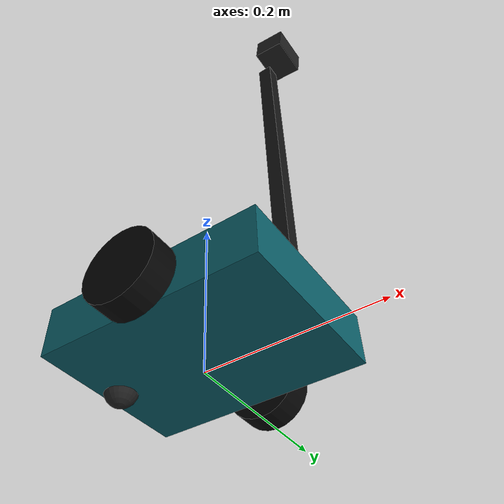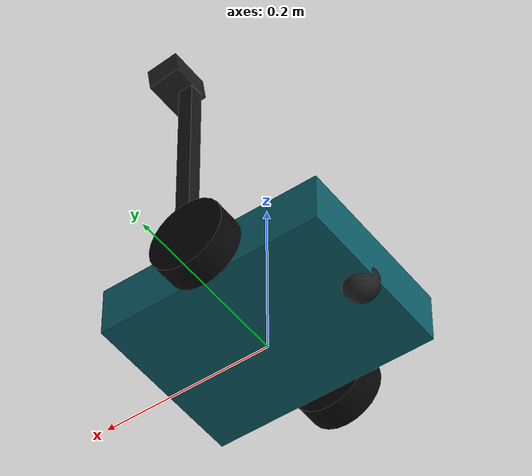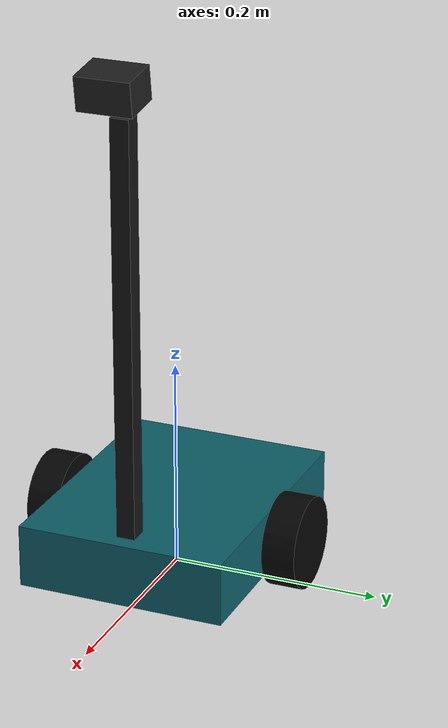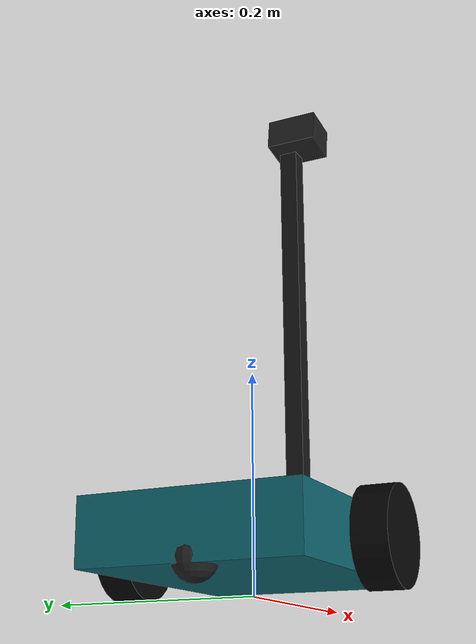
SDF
<?xml version="1.0"?>
<sdf version="1.6">
  <model name="stable_diff_cam">
    <pose>0 0 0 0 0 0</pose>

    <link name="base_footprint"/>

    <link name="base_link">
      <pose>0 0 0.045 0 0 0</pose>
      <inertial>
        <pose>0 0 -0.010 0 0 0</pose>
        <mass>2.5</mass>
        <inertia>
          <ixx>0.009</ixx>
          <ixy>0.0</ixy>
          <ixz>0.0</ixz>
          <iyy>0.016</iyy>
          <iyz>0.0</iyz>
          <izz>0.022</izz>
        </inertia>
      </inertial>
      <collision name="base_collision">
        <geometry>
          <box>
            <size>0.26 0.20 0.06</size>
          </box>
        </geometry>
        <surface>
          <contact>
            <ode>
              <kp>1e+5</kp>
              <kd>1</kd>
              <max_vel>0.01</max_vel>
              <min_depth>0.001</min_depth>
            </ode>
          </contact>
        </surface>
      </collision>
      <visual name="base_visual">
        <geometry>
          <box>
            <size>0.26 0.20 0.06</size>
          </box>
        </geometry>
        <material>
          <ambient>0.05 0.16 0.18 1</ambient>
          <diffuse>0.05 0.38 0.42 1</diffuse>
          <specular>0.02 0.02 0.02 1</specular>
        </material>
      </visual>
      <visual name="camera_mast_visual">
        <pose>0.105 0 0.225 0 0 0</pose>
        <geometry>
          <box>
            <size>0.018 0.018 0.40</size>
          </box>
        </geometry>
        <material>
          <ambient>0.08 0.08 0.08 1</ambient>
          <diffuse>0.08 0.08 0.08 1</diffuse>
        </material>
      </visual>
    </link>

    <joint name="base_joint" type="fixed">
      <parent>base_footprint</parent>
      <child>base_link</child>
      <pose>0 0 0.045 0 0 0</pose>
    </joint>

    <link name="wheel_left_link">
      <pose>0 0.120 0.044 -1.5708 0 0</pose>
      <inertial>
        <mass>0.25</mass>
        <inertia>
          <ixx>0.00012</ixx>
          <ixy>0.0</ixy>
          <ixz>0.0</ixz>
          <iyy>0.00022</iyy>
          <iyz>0.0</iyz>
          <izz>0.00012</izz>
        </inertia>
      </inertial>
      <collision name="collision">
        <geometry>
          <cylinder>
            <radius>0.044</radius>
            <length>0.032</length>
          </cylinder>
        </geometry>
        <surface>
          <friction>
            <ode>
              <mu>4.0</mu>
              <mu2>4.0</mu2>
              <slip1>0.01</slip1>
              <slip2>0.01</slip2>
            </ode>
          </friction>
          <contact>
            <ode>
              <kp>1e+5</kp>
              <kd>1</kd>
              <max_vel>0.01</max_vel>
              <min_depth>0.001</min_depth>
            </ode>
          </contact>
        </surface>
      </collision>
      <visual name="visual">
        <geometry>
          <cylinder>
            <radius>0.044</radius>
            <length>0.032</length>
          </cylinder>
        </geometry>
        <material>
          <ambient>0.02 0.02 0.02 1</ambient>
          <diffuse>0.02 0.02 0.02 1</diffuse>
        </material>
      </visual>
    </link>

    <link name="wheel_right_link">
      <pose>0 -0.120 0.044 -1.5708 0 0</pose>
      <inertial>
        <mass>0.25</mass>
        <inertia>
          <ixx>0.00012</ixx>
          <ixy>0.0</ixy>
          <ixz>0.0</ixz>
          <iyy>0.00022</iyy>
          <iyz>0.0</iyz>
          <izz>0.00012</izz>
        </inertia>
      </inertial>
      <collision name="collision">
        <geometry>
          <cylinder>
            <radius>0.044</radius>
            <length>0.032</length>
          </cylinder>
        </geometry>
        <surface>
          <friction>
            <ode>
              <mu>4.0</mu>
              <mu2>4.0</mu2>
              <slip1>0.01</slip1>
              <slip2>0.01</slip2>
            </ode>
          </friction>
          <contact>
            <ode>
              <kp>1e+5</kp>
              <kd>1</kd>
              <max_vel>0.01</max_vel>
              <min_depth>0.001</min_depth>
            </ode>
          </contact>
        </surface>
      </collision>
      <visual name="visual">
        <geometry>
          <cylinder>
            <radius>0.044</radius>
            <length>0.032</length>
          </cylinder>
        </geometry>
        <material>
          <ambient>0.02 0.02 0.02 1</ambient>
          <diffuse>0.02 0.02 0.02 1</diffuse>
        </material>
      </visual>
    </link>

    <joint name="wheel_left_joint" type="revolute">
      <parent>base_link</parent>
      <child>wheel_left_link</child>
      <axis>
        <xyz>0 0 1</xyz>
        <limit>
          <lower>-1e16</lower>
          <upper>1e16</upper>
        </limit>
      </axis>
    </joint>

    <joint name="wheel_right_joint" type="revolute">
      <parent>base_link</parent>
      <child>wheel_right_link</child>
      <axis>
        <xyz>0 0 1</xyz>
        <limit>
          <lower>-1e16</lower>
          <upper>1e16</upper>
        </limit>
      </axis>
    </joint>

    <link name="caster_back_link">
      <pose>-0.112 0 0.021 0 0 0</pose>
      <inertial>
        <mass>0.06</mass>
        <inertia>
          <ixx>0.00002</ixx>
          <ixy>0.0</ixy>
          <ixz>0.0</ixz>
          <iyy>0.00002</iyy>
          <iyz>0.0</iyz>
          <izz>0.00002</izz>
        </inertia>
      </inertial>
      <collision name="collision">
        <geometry>
          <sphere>
            <radius>0.020</radius>
          </sphere>
        </geometry>
        <surface>
          <friction>
            <ode>
              <mu>0.1</mu>
              <mu2>0.1</mu2>
            </ode>
          </friction>
        </surface>
      </collision>
      <visual name="visual">
        <geometry>
          <sphere>
            <radius>0.020</radius>
          </sphere>
        </geometry>
        <material>
          <ambient>0.12 0.12 0.12 1</ambient>
          <diffuse>0.12 0.12 0.12 1</diffuse>
        </material>
      </visual>
    </link>

    <joint name="caster_back_joint" type="ball">
      <parent>base_link</parent>
      <child>caster_back_link</child>
    </joint>

    <link name="camera_link">
      <pose>0.125 0 0.500 0 0.13962634 0</pose>
      <inertial>
        <mass>0.06</mass>
        <inertia>
          <ixx>0.00005</ixx>
          <ixy>0.0</ixy>
          <ixz>0.0</ixz>
          <iyy>0.00005</iyy>
          <iyz>0.0</iyz>
          <izz>0.00005</izz>
        </inertia>
      </inertial>
      <visual name="visual">
        <geometry>
          <box>
            <size>0.040 0.052 0.032</size>
          </box>
        </geometry>
        <material>
          <ambient>0.12 0.12 0.12 1</ambient>
          <diffuse>0.12 0.12 0.12 1</diffuse>
        </material>
      </visual>
      <sensor name="camera" type="camera">
        <always_on>true</always_on>
        <visualize>true</visualize>
        <update_rate>20</update_rate>
        <camera>
          <horizontal_fov>2.094395102</horizontal_fov>
          <image>
            <width>320</width>
            <height>240</height>
            <format>R8G8B8</format>
          </image>
          <clip>
            <near>0.03</near>
            <far>60</far>
          </clip>
        </camera>
        <plugin name="camera_driver" filename="libgazebo_ros_camera.so">
          <camera_name>camera</camera_name>
          <frame_name>camera_link</frame_name>
          <ros>
            <remapping>image_raw:=/camera/image_raw</remapping>
            <remapping>camera_info:=/camera/camera_info</remapping>
          </ros>
        </plugin>
      </sensor>
    </link>

    <joint name="camera_joint" type="fixed">
      <parent>base_link</parent>
      <child>camera_link</child>
      <pose>0.125 0 0.500 0 0.13962634 0</pose>
    </joint>

    <plugin name="stable_diff_drive" filename="libgazebo_ros_diff_drive.so">
      <update_rate>50</update_rate>
      <left_joint>wheel_left_joint</left_joint>
      <right_joint>wheel_right_joint</right_joint>
      <wheel_separation>0.24</wheel_separation>
      <wheel_diameter>0.088</wheel_diameter>
      <max_wheel_torque>12</max_wheel_torque>
      <max_wheel_acceleration>0.45</max_wheel_acceleration>
      <command_topic>cmd_vel</command_topic>
      <publish_odom>true</publish_odom>
      <publish_odom_tf>true</publish_odom_tf>
      <publish_wheel_tf>false</publish_wheel_tf>
      <odometry_topic>odom</odometry_topic>
      <odometry_frame>odom</odometry_frame>
      <robot_base_frame>base_footprint</robot_base_frame>
    </plugin>

    <plugin name="stable_joint_state" filename="libgazebo_ros_joint_state_publisher.so">
      <ros>
        <remapping>~/out:=joint_states</remapping>
      </ros>
      <update_rate>30</update_rate>
      <joint_name>wheel_left_joint</joint_name>
      <joint_name>wheel_right_joint</joint_name>
    </plugin>
  </model>
</sdf>
